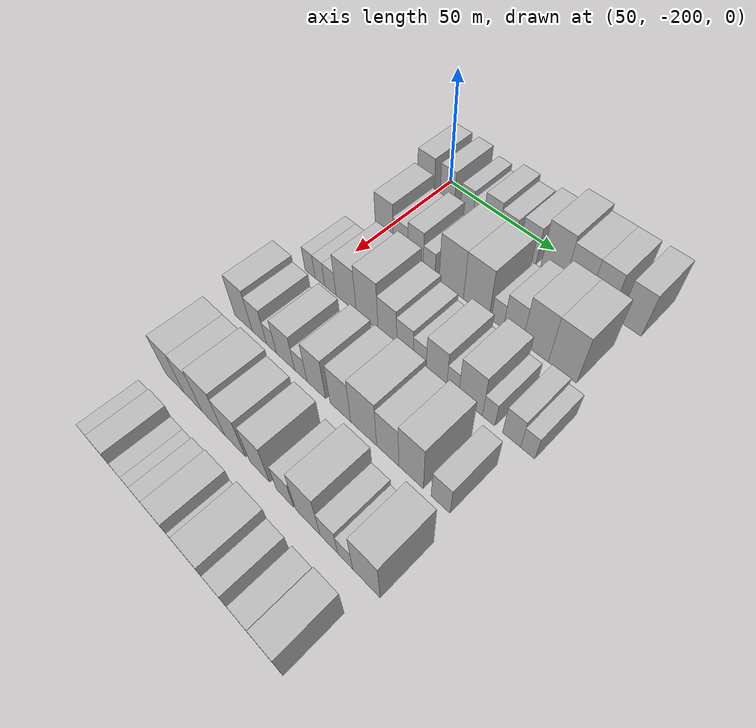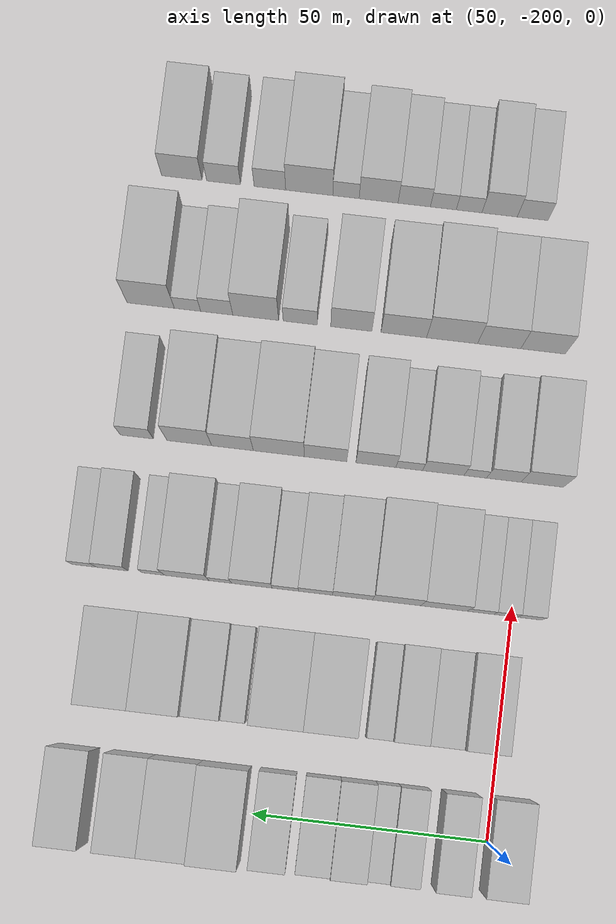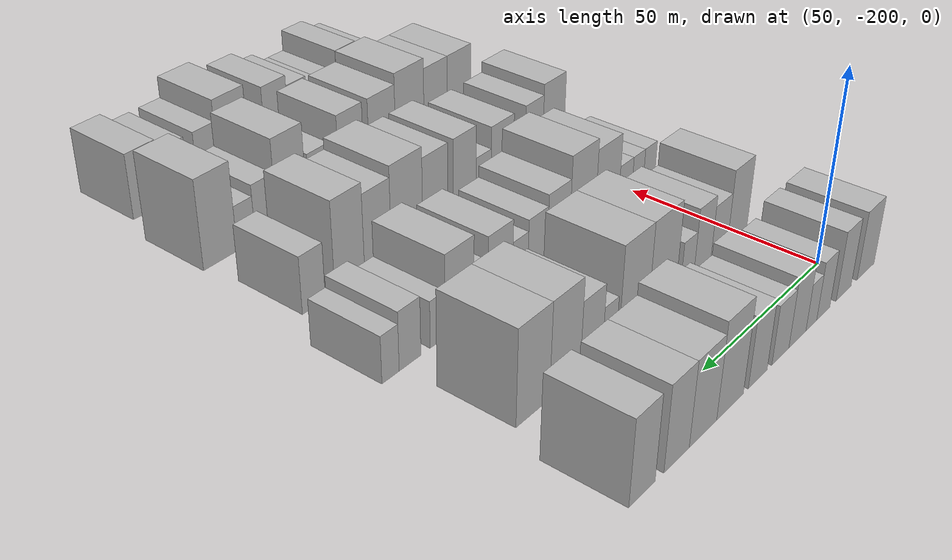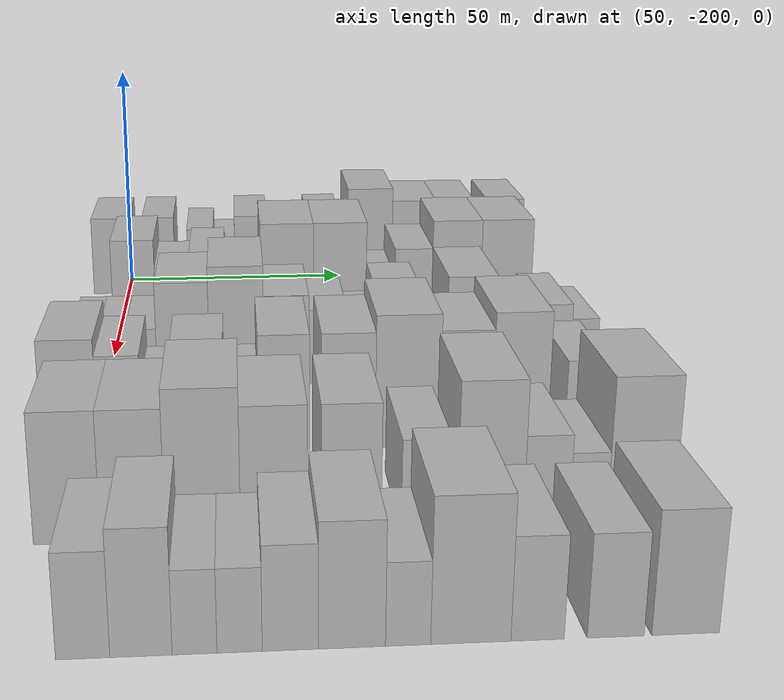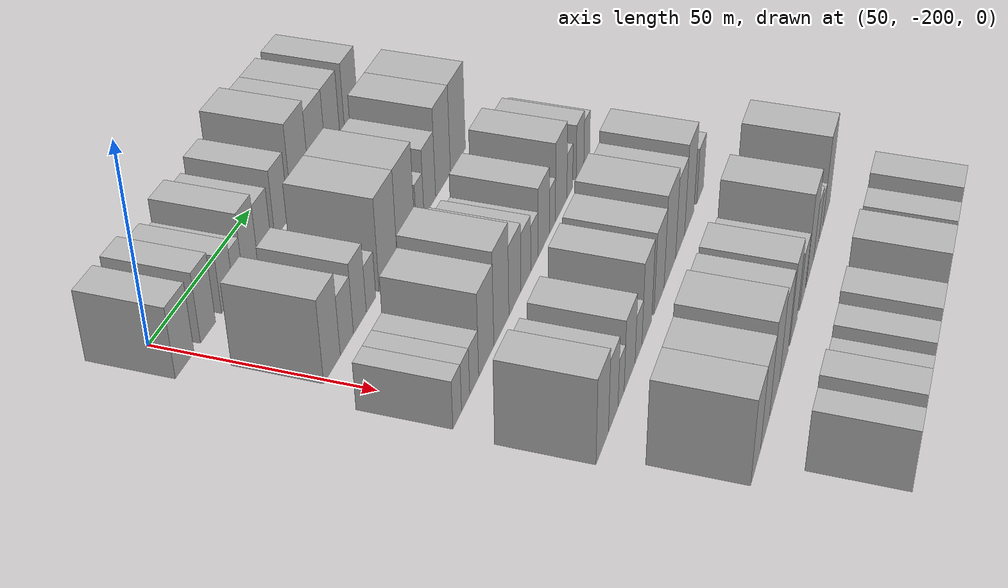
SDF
<sdf version="1.6">
 <world name="default">
  <model name="building_36">
   <static>1</static>
   <pose>50.0000 -203.7256 0 0.000000 0.000000 0.000000</pose>
   <link name="link">
    <pose>0 0 9.00 0 0 0</pose>
    <collision name="collision"><geometry><box><size>20.0000 8.5807 18.0000</size></box></geometry></collision>
    <visual name="visual">
     <cast_shadows>0</cast_shadows>
     <geometry><box><size>20.0000 8.5807 18.0000</size></box></geometry>
     <material>
      <script>
       <uri>model://HANNAS_wall/materials/scripts</uri>
       <uri>model://HANNAS_wall/materials/textures</uri>
       <name>vrc/HANNAS_wall</name>
      </script>
     </material>
    </visual>
   </link>
  </model>
  <model name="building_37">
   <static>1</static>
   <pose>50.0000 -192.8205 0 0.000000 0.000000 0.000000</pose>
   <link name="link">
    <pose>0 0 9.00 0 0 0</pose>
    <collision name="collision"><geometry><box><size>20.0000 7.2296 18.0000</size></box></geometry></collision>
    <visual name="visual">
     <cast_shadows>0</cast_shadows>
     <geometry><box><size>20.0000 7.2296 18.0000</size></box></geometry>
     <material>
      <script>
       <uri>model://HANNAS_wall/materials/scripts</uri>
       <uri>model://HANNAS_wall/materials/textures</uri>
       <name>vrc/HANNAS_wall</name>
      </script>
     </material>
    </visual>
   </link>
  </model>
  <model name="building_38">
   <static>1</static>
   <pose>50.0000 -183.1568 0 0.000000 0.000000 0.000000</pose>
   <link name="link">
    <pose>0 0 7.50 0 0 0</pose>
    <collision name="collision"><geometry><box><size>20.0000 6.0977 15.0000</size></box></geometry></collision>
    <visual name="visual">
     <cast_shadows>0</cast_shadows>
     <geometry><box><size>20.0000 6.0977 15.0000</size></box></geometry>
     <material>
      <script>
       <uri>model://HANNAS_wall/materials/scripts</uri>
       <uri>model://HANNAS_wall/materials/textures</uri>
       <name>vrc/HANNAS_wall</name>
      </script>
     </material>
    </visual>
   </link>
  </model>
  <model name="building_39">
   <static>1</static>
   <pose>50.0000 -177.6586 0 0.000000 0.000000 0.000000</pose>
   <link name="link">
    <pose>0 0 6.00 0 0 0</pose>
    <collision name="collision"><geometry><box><size>20.0000 4.8987 12.0000</size></box></geometry></collision>
    <visual name="visual">
     <cast_shadows>0</cast_shadows>
     <geometry><box><size>20.0000 4.8987 12.0000</size></box></geometry>
     <material>
      <script>
       <uri>model://HANNAS_wall/materials/scripts</uri>
       <uri>model://HANNAS_wall/materials/textures</uri>
       <name>vrc/HANNAS_wall</name>
      </script>
     </material>
    </visual>
   </link>
  </model>
  <model name="building_40">
   <static>1</static>
   <pose>50.0000 -171.4478 0 0.000000 0.000000 0.000000</pose>
   <link name="link">
    <pose>0 0 9.00 0 0 0</pose>
    <collision name="collision"><geometry><box><size>20.0000 7.5229 18.0000</size></box></geometry></collision>
    <visual name="visual">
     <cast_shadows>0</cast_shadows>
     <geometry><box><size>20.0000 7.5229 18.0000</size></box></geometry>
     <material>
      <script>
       <uri>model://HANNAS_wall/materials/scripts</uri>
       <uri>model://HANNAS_wall/materials/textures</uri>
       <name>vrc/HANNAS_wall</name>
      </script>
     </material>
    </visual>
   </link>
  </model>
  <model name="building_41">
   <static>1</static>
   <pose>50.0000 -164.0567 0 0.000000 0.000000 0.000000</pose>
   <link name="link">
    <pose>0 0 7.50 0 0 0</pose>
    <collision name="collision"><geometry><box><size>20.0000 7.2592 15.0000</size></box></geometry></collision>
    <visual name="visual">
     <cast_shadows>0</cast_shadows>
     <geometry><box><size>20.0000 7.2592 15.0000</size></box></geometry>
     <material>
      <script>
       <uri>model://HANNAS_wall/materials/scripts</uri>
       <uri>model://HANNAS_wall/materials/textures</uri>
       <name>vrc/HANNAS_wall</name>
      </script>
     </material>
    </visual>
   </link>
  </model>
  <model name="building_42">
   <static>1</static>
   <pose>50.0000 -154.5788 0 0.000000 0.000000 0.000000</pose>
   <link name="link">
    <pose>0 0 9.00 0 0 0</pose>
    <collision name="collision"><geometry><box><size>20.0000 7.6966 18.0000</size></box></geometry></collision>
    <visual name="visual">
     <cast_shadows>0</cast_shadows>
     <geometry><box><size>20.0000 7.6966 18.0000</size></box></geometry>
     <material>
      <script>
       <uri>model://HANNAS_wall/materials/scripts</uri>
       <uri>model://HANNAS_wall/materials/textures</uri>
       <name>vrc/HANNAS_wall</name>
      </script>
     </material>
    </visual>
   </link>
  </model>
  <model name="building_43">
   <static>1</static>
   <pose>50.0000 -143.5376 0 0.000000 0.000000 0.000000</pose>
   <link name="link">
    <pose>0 0 12.00 0 0 0</pose>
    <collision name="collision"><geometry><box><size>20.0000 10.3859 24.0000</size></box></geometry></collision>
    <visual name="visual">
     <cast_shadows>0</cast_shadows>
     <geometry><box><size>20.0000 10.3859 24.0000</size></box></geometry>
     <material>
      <script>
       <uri>model://HANNAS_wall/materials/scripts</uri>
       <uri>model://HANNAS_wall/materials/textures</uri>
       <name>vrc/HANNAS_wall</name>
      </script>
     </material>
    </visual>
   </link>
  </model>
  <model name="building_44">
   <static>1</static>
   <pose>50.0000 -133.2774 0 0.000000 0.000000 0.000000</pose>
   <link name="link">
    <pose>0 0 10.50 0 0 0</pose>
    <collision name="collision"><geometry><box><size>20.0000 10.1345 21.0000</size></box></geometry></collision>
    <visual name="visual">
     <cast_shadows>0</cast_shadows>
     <geometry><box><size>20.0000 10.1345 21.0000</size></box></geometry>
     <material>
      <script>
       <uri>model://HANNAS_wall/materials/scripts</uri>
       <uri>model://HANNAS_wall/materials/textures</uri>
       <name>vrc/HANNAS_wall</name>
      </script>
     </material>
    </visual>
   </link>
  </model>
  <model name="building_45">
   <static>1</static>
   <pose>50.0000 -123.7188 0 0.000000 0.000000 0.000000</pose>
   <link name="link">
    <pose>0 0 10.50 0 0 0</pose>
    <collision name="collision"><geometry><box><size>20.0000 8.9827 21.0000</size></box></geometry></collision>
    <visual name="visual">
     <cast_shadows>0</cast_shadows>
     <geometry><box><size>20.0000 8.9827 21.0000</size></box></geometry>
     <material>
      <script>
       <uri>model://HANNAS_wall/materials/scripts</uri>
       <uri>model://HANNAS_wall/materials/textures</uri>
       <name>vrc/HANNAS_wall</name>
      </script>
     </material>
    </visual>
   </link>
  </model>
  <model name="building_46">
   <static>1</static>
   <pose>50.0000 -111.8384 0 0.000000 0.000000 0.000000</pose>
   <link name="link">
    <pose>0 0 10.50 0 0 0</pose>
    <collision name="collision"><geometry><box><size>20.0000 8.7780 21.0000</size></box></geometry></collision>
    <visual name="visual">
     <cast_shadows>0</cast_shadows>
     <geometry><box><size>20.0000 8.7780 21.0000</size></box></geometry>
     <material>
      <script>
       <uri>model://HANNAS_wall/materials/scripts</uri>
       <uri>model://HANNAS_wall/materials/textures</uri>
       <name>vrc/HANNAS_wall</name>
      </script>
     </material>
    </visual>
   </link>
  </model>
  <model name="building_148">
   <static>1</static>
   <pose>79.0000 -196.5860 0 0.000000 0.000000 0.000000</pose>
   <link name="link">
    <pose>0 0 10.50 0 0 0</pose>
    <collision name="collision"><geometry><box><size>20.0000 8.9480 21.0000</size></box></geometry></collision>
    <visual name="visual">
     <cast_shadows>0</cast_shadows>
     <geometry><box><size>20.0000 8.9480 21.0000</size></box></geometry>
     <material>
      <script>
       <uri>model://HANNAS_wall/materials/scripts</uri>
       <uri>model://HANNAS_wall/materials/textures</uri>
       <name>vrc/HANNAS_wall</name>
      </script>
     </material>
    </visual>
   </link>
  </model>
  <model name="building_149">
   <static>1</static>
   <pose>79.0000 -188.4602 0 0.000000 0.000000 0.000000</pose>
   <link name="link">
    <pose>0 0 7.50 0 0 0</pose>
    <collision name="collision"><geometry><box><size>20.0000 7.3036 15.0000</size></box></geometry></collision>
    <visual name="visual">
     <cast_shadows>0</cast_shadows>
     <geometry><box><size>20.0000 7.3036 15.0000</size></box></geometry>
     <material>
      <script>
       <uri>model://HANNAS_wall/materials/scripts</uri>
       <uri>model://HANNAS_wall/materials/textures</uri>
       <name>vrc/HANNAS_wall</name>
      </script>
     </material>
    </visual>
   </link>
  </model>
  <model name="building_150">
   <static>1</static>
   <pose>79.0000 -181.1366 0 0.000000 0.000000 0.000000</pose>
   <link name="link">
    <pose>0 0 9.00 0 0 0</pose>
    <collision name="collision"><geometry><box><size>20.0000 7.3436 18.0000</size></box></geometry></collision>
    <visual name="visual">
     <cast_shadows>0</cast_shadows>
     <geometry><box><size>20.0000 7.3436 18.0000</size></box></geometry>
     <material>
      <script>
       <uri>model://HANNAS_wall/materials/scripts</uri>
       <uri>model://HANNAS_wall/materials/textures</uri>
       <name>vrc/HANNAS_wall</name>
      </script>
     </material>
    </visual>
   </link>
  </model>
  <model name="building_151">
   <static>1</static>
   <pose>79.0000 -174.6814 0 0.000000 0.000000 0.000000</pose>
   <link name="link">
    <pose>0 0 6.00 0 0 0</pose>
    <collision name="collision"><geometry><box><size>20.0000 5.5668 12.0000</size></box></geometry></collision>
    <visual name="visual">
     <cast_shadows>0</cast_shadows>
     <geometry><box><size>20.0000 5.5668 12.0000</size></box></geometry>
     <material>
      <script>
       <uri>model://HANNAS_wall/materials/scripts</uri>
       <uri>model://HANNAS_wall/materials/textures</uri>
       <name>vrc/HANNAS_wall</name>
      </script>
     </material>
    </visual>
   </link>
  </model>
  <model name="building_152">
   <static>1</static>
   <pose>79.0000 -164.3214 0 0.000000 0.000000 0.000000</pose>
   <link name="link">
    <pose>0 0 12.00 0 0 0</pose>
    <collision name="collision"><geometry><box><size>20.0000 11.1532 24.0000</size></box></geometry></collision>
    <visual name="visual">
     <cast_shadows>0</cast_shadows>
     <geometry><box><size>20.0000 11.1532 24.0000</size></box></geometry>
     <material>
      <script>
       <uri>model://HANNAS_wall/materials/scripts</uri>
       <uri>model://HANNAS_wall/materials/textures</uri>
       <name>vrc/HANNAS_wall</name>
      </script>
     </material>
    </visual>
   </link>
  </model>
  <model name="building_153">
   <static>1</static>
   <pose>79.0000 -153.0973 0 0.000000 0.000000 0.000000</pose>
   <link name="link">
    <pose>0 0 12.00 0 0 0</pose>
    <collision name="collision"><geometry><box><size>20.0000 11.2950 24.0000</size></box></geometry></collision>
    <visual name="visual">
     <cast_shadows>0</cast_shadows>
     <geometry><box><size>20.0000 11.2950 24.0000</size></box></geometry>
     <material>
      <script>
       <uri>model://HANNAS_wall/materials/scripts</uri>
       <uri>model://HANNAS_wall/materials/textures</uri>
       <name>vrc/HANNAS_wall</name>
      </script>
     </material>
    </visual>
   </link>
  </model>
  <model name="building_154">
   <static>1</static>
   <pose>79.0000 -143.8885 0 0.000000 0.000000 0.000000</pose>
   <link name="link">
    <pose>0 0 6.00 0 0 0</pose>
    <collision name="collision"><geometry><box><size>20.0000 5.1227 12.0000</size></box></geometry></collision>
    <visual name="visual">
     <cast_shadows>0</cast_shadows>
     <geometry><box><size>20.0000 5.1227 12.0000</size></box></geometry>
     <material>
      <script>
       <uri>model://HANNAS_wall/materials/scripts</uri>
       <uri>model://HANNAS_wall/materials/textures</uri>
       <name>vrc/HANNAS_wall</name>
      </script>
     </material>
    </visual>
   </link>
  </model>
  <model name="building_155">
   <static>1</static>
   <pose>79.0000 -137.3324 0 0.000000 0.000000 0.000000</pose>
   <link name="link">
    <pose>0 0 9.00 0 0 0</pose>
    <collision name="collision"><geometry><box><size>20.0000 7.9895 18.0000</size></box></geometry></collision>
    <visual name="visual">
     <cast_shadows>0</cast_shadows>
     <geometry><box><size>20.0000 7.9895 18.0000</size></box></geometry>
     <material>
      <script>
       <uri>model://HANNAS_wall/materials/scripts</uri>
       <uri>model://HANNAS_wall/materials/textures</uri>
       <name>vrc/HANNAS_wall</name>
      </script>
     </material>
    </visual>
   </link>
  </model>
  <model name="building_156">
   <static>1</static>
   <pose>79.0000 -128.0997 0 0.000000 0.000000 0.000000</pose>
   <link name="link">
    <pose>0 0 12.00 0 0 0</pose>
    <collision name="collision"><geometry><box><size>20.0000 10.4760 24.0000</size></box></geometry></collision>
    <visual name="visual">
     <cast_shadows>0</cast_shadows>
     <geometry><box><size>20.0000 10.4760 24.0000</size></box></geometry>
     <material>
      <script>
       <uri>model://HANNAS_wall/materials/scripts</uri>
       <uri>model://HANNAS_wall/materials/textures</uri>
       <name>vrc/HANNAS_wall</name>
      </script>
     </material>
    </visual>
   </link>
  </model>
  <model name="building_157">
   <static>1</static>
   <pose>79.0000 -117.3535 0 0.000000 0.000000 0.000000</pose>
   <link name="link">
    <pose>0 0 12.00 0 0 0</pose>
    <collision name="collision"><geometry><box><size>20.0000 11.0164 24.0000</size></box></geometry></collision>
    <visual name="visual">
     <cast_shadows>0</cast_shadows>
     <geometry><box><size>20.0000 11.0164 24.0000</size></box></geometry>
     <material>
      <script>
       <uri>model://HANNAS_wall/materials/scripts</uri>
       <uri>model://HANNAS_wall/materials/textures</uri>
       <name>vrc/HANNAS_wall</name>
      </script>
     </material>
    </visual>
   </link>
  </model>
  <model name="building_259">
   <static>1</static>
   <pose>108.0000 -203.8097 0 0.000000 0.000000 0.000000</pose>
   <link name="link">
    <pose>0 0 6.00 0 0 0</pose>
    <collision name="collision"><geometry><box><size>20.0000 5.2586 12.0000</size></box></geometry></collision>
    <visual name="visual">
     <cast_shadows>0</cast_shadows>
     <geometry><box><size>20.0000 5.2586 12.0000</size></box></geometry>
     <material>
      <script>
       <uri>model://HANNAS_wall/materials/scripts</uri>
       <uri>model://HANNAS_wall/materials/textures</uri>
       <name>vrc/HANNAS_wall</name>
      </script>
     </material>
    </visual>
   </link>
  </model>
  <model name="building_260">
   <static>1</static>
   <pose>108.0000 -198.6536 0 0.000000 0.000000 0.000000</pose>
   <link name="link">
    <pose>0 0 6.00 0 0 0</pose>
    <collision name="collision"><geometry><box><size>20.0000 5.0536 12.0000</size></box></geometry></collision>
    <visual name="visual">
     <cast_shadows>0</cast_shadows>
     <geometry><box><size>20.0000 5.0536 12.0000</size></box></geometry>
     <material>
      <script>
       <uri>model://HANNAS_wall/materials/scripts</uri>
       <uri>model://HANNAS_wall/materials/textures</uri>
       <name>vrc/HANNAS_wall</name>
      </script>
     </material>
    </visual>
   </link>
  </model>
  <model name="building_261">
   <static>1</static>
   <pose>108.0000 -193.2726 0 0.000000 0.000000 0.000000</pose>
   <link name="link">
    <pose>0 0 6.00 0 0 0</pose>
    <collision name="collision"><geometry><box><size>20.0000 5.7086 12.0000</size></box></geometry></collision>
    <visual name="visual">
     <cast_shadows>0</cast_shadows>
     <geometry><box><size>20.0000 5.7086 12.0000</size></box></geometry>
     <material>
      <script>
       <uri>model://HANNAS_wall/materials/scripts</uri>
       <uri>model://HANNAS_wall/materials/textures</uri>
       <name>vrc/HANNAS_wall</name>
      </script>
     </material>
    </visual>
   </link>
  </model>
  <model name="building_262">
   <static>1</static>
   <pose>108.0000 -185.4451 0 0.000000 0.000000 0.000000</pose>
   <link name="link">
    <pose>0 0 10.50 0 0 0</pose>
    <collision name="collision"><geometry><box><size>20.0000 9.9463 21.0000</size></box></geometry></collision>
    <visual name="visual">
     <cast_shadows>0</cast_shadows>
     <geometry><box><size>20.0000 9.9463 21.0000</size></box></geometry>
     <material>
      <script>
       <uri>model://HANNAS_wall/materials/scripts</uri>
       <uri>model://HANNAS_wall/materials/textures</uri>
       <name>vrc/HANNAS_wall</name>
      </script>
     </material>
    </visual>
   </link>
  </model>
  <model name="building_263">
   <static>1</static>
   <pose>108.0000 -175.2684 0 0.000000 0.000000 0.000000</pose>
   <link name="link">
    <pose>0 0 12.00 0 0 0</pose>
    <collision name="collision"><geometry><box><size>20.0000 10.4073 24.0000</size></box></geometry></collision>
    <visual name="visual">
     <cast_shadows>0</cast_shadows>
     <geometry><box><size>20.0000 10.4073 24.0000</size></box></geometry>
     <material>
      <script>
       <uri>model://HANNAS_wall/materials/scripts</uri>
       <uri>model://HANNAS_wall/materials/textures</uri>
       <name>vrc/HANNAS_wall</name>
      </script>
     </material>
    </visual>
   </link>
  </model>
  <model name="building_264">
   <static>1</static>
   <pose>108.0000 -165.7623 0 0.000000 0.000000 0.000000</pose>
   <link name="link">
    <pose>0 0 9.00 0 0 0</pose>
    <collision name="collision"><geometry><box><size>20.0000 8.6048 18.0000</size></box></geometry></collision>
    <visual name="visual">
     <cast_shadows>0</cast_shadows>
     <geometry><box><size>20.0000 8.6048 18.0000</size></box></geometry>
     <material>
      <script>
       <uri>model://HANNAS_wall/materials/scripts</uri>
       <uri>model://HANNAS_wall/materials/textures</uri>
       <name>vrc/HANNAS_wall</name>
      </script>
     </material>
    </visual>
   </link>
  </model>
  <model name="building_265">
   <static>1</static>
   <pose>108.0000 -157.8031 0 0.000000 0.000000 0.000000</pose>
   <link name="link">
    <pose>0 0 7.50 0 0 0</pose>
    <collision name="collision"><geometry><box><size>20.0000 7.3136 15.0000</size></box></geometry></collision>
    <visual name="visual">
     <cast_shadows>0</cast_shadows>
     <geometry><box><size>20.0000 7.3136 15.0000</size></box></geometry>
     <material>
      <script>
       <uri>model://HANNAS_wall/materials/scripts</uri>
       <uri>model://HANNAS_wall/materials/textures</uri>
       <name>vrc/HANNAS_wall</name>
      </script>
     </material>
    </visual>
   </link>
  </model>
  <model name="building_266">
   <static>1</static>
   <pose>108.0000 -151.3128 0 0.000000 0.000000 0.000000</pose>
   <link name="link">
    <pose>0 0 6.00 0 0 0</pose>
    <collision name="collision"><geometry><box><size>20.0000 5.6670 12.0000</size></box></geometry></collision>
    <visual name="visual">
     <cast_shadows>0</cast_shadows>
     <geometry><box><size>20.0000 5.6670 12.0000</size></box></geometry>
     <material>
      <script>
       <uri>model://HANNAS_wall/materials/scripts</uri>
       <uri>model://HANNAS_wall/materials/textures</uri>
       <name>vrc/HANNAS_wall</name>
      </script>
     </material>
    </visual>
   </link>
  </model>
  <model name="building_267">
   <static>1</static>
   <pose>108.0000 -144.1164 0 0.000000 0.000000 0.000000</pose>
   <link name="link">
    <pose>0 0 9.00 0 0 0</pose>
    <collision name="collision"><geometry><box><size>20.0000 8.7258 18.0000</size></box></geometry></collision>
    <visual name="visual">
     <cast_shadows>0</cast_shadows>
     <geometry><box><size>20.0000 8.7258 18.0000</size></box></geometry>
     <material>
      <script>
       <uri>model://HANNAS_wall/materials/scripts</uri>
       <uri>model://HANNAS_wall/materials/textures</uri>
       <name>vrc/HANNAS_wall</name>
      </script>
     </material>
    </visual>
   </link>
  </model>
  <model name="building_268">
   <static>1</static>
   <pose>108.0000 -137.3046 0 0.000000 0.000000 0.000000</pose>
   <link name="link">
    <pose>0 0 6.00 0 0 0</pose>
    <collision name="collision"><geometry><box><size>20.0000 4.8979 12.0000</size></box></geometry></collision>
    <visual name="visual">
     <cast_shadows>0</cast_shadows>
     <geometry><box><size>20.0000 4.8979 12.0000</size></box></geometry>
     <material>
      <script>
       <uri>model://HANNAS_wall/materials/scripts</uri>
       <uri>model://HANNAS_wall/materials/textures</uri>
       <name>vrc/HANNAS_wall</name>
      </script>
     </material>
    </visual>
   </link>
  </model>
  <model name="building_269">
   <static>1</static>
   <pose>108.0000 -130.0795 0 0.000000 0.000000 0.000000</pose>
   <link name="link">
    <pose>0 0 10.50 0 0 0</pose>
    <collision name="collision"><geometry><box><size>20.0000 9.5524 21.0000</size></box></geometry></collision>
    <visual name="visual">
     <cast_shadows>0</cast_shadows>
     <geometry><box><size>20.0000 9.5524 21.0000</size></box></geometry>
     <material>
      <script>
       <uri>model://HANNAS_wall/materials/scripts</uri>
       <uri>model://HANNAS_wall/materials/textures</uri>
       <name>vrc/HANNAS_wall</name>
      </script>
     </material>
    </visual>
   </link>
  </model>
  <model name="building_270">
   <static>1</static>
   <pose>108.0000 -122.8451 0 0.000000 0.000000 0.000000</pose>
   <link name="link">
    <pose>0 0 6.00 0 0 0</pose>
    <collision name="collision"><geometry><box><size>20.0000 4.9163 12.0000</size></box></geometry></collision>
    <visual name="visual">
     <cast_shadows>0</cast_shadows>
     <geometry><box><size>20.0000 4.9163 12.0000</size></box></geometry>
     <material>
      <script>
       <uri>model://HANNAS_wall/materials/scripts</uri>
       <uri>model://HANNAS_wall/materials/textures</uri>
       <name>vrc/HANNAS_wall</name>
      </script>
     </material>
    </visual>
   </link>
  </model>
  <model name="building_271">
   <static>1</static>
   <pose>108.0000 -113.9881 0 0.000000 0.000000 0.000000</pose>
   <link name="link">
    <pose>0 0 7.50 0 0 0</pose>
    <collision name="collision"><geometry><box><size>20.0000 6.7977 15.0000</size></box></geometry></collision>
    <visual name="visual">
     <cast_shadows>0</cast_shadows>
     <geometry><box><size>20.0000 6.7977 15.0000</size></box></geometry>
     <material>
      <script>
       <uri>model://HANNAS_wall/materials/scripts</uri>
       <uri>model://HANNAS_wall/materials/textures</uri>
       <name>vrc/HANNAS_wall</name>
      </script>
     </material>
    </visual>
   </link>
  </model>
  <model name="building_272">
   <static>1</static>
   <pose>108.0000 -107.9526 0 0.000000 0.000000 0.000000</pose>
   <link name="link">
    <pose>0 0 6.00 0 0 0</pose>
    <collision name="collision"><geometry><box><size>20.0000 5.2732 12.0000</size></box></geometry></collision>
    <visual name="visual">
     <cast_shadows>0</cast_shadows>
     <geometry><box><size>20.0000 5.2732 12.0000</size></box></geometry>
     <material>
      <script>
       <uri>model://HANNAS_wall/materials/scripts</uri>
       <uri>model://HANNAS_wall/materials/textures</uri>
       <name>vrc/HANNAS_wall</name>
      </script>
     </material>
    </visual>
   </link>
  </model>
  <model name="building_369">
   <static>1</static>
   <pose>137.0000 -203.5643 0 0.000000 0.000000 0.000000</pose>
   <link name="link">
    <pose>0 0 10.50 0 0 0</pose>
    <collision name="collision"><geometry><box><size>20.0000 9.3043 21.0000</size></box></geometry></collision>
    <visual name="visual">
     <cast_shadows>0</cast_shadows>
     <geometry><box><size>20.0000 9.3043 21.0000</size></box></geometry>
     <material>
      <script>
       <uri>model://HANNAS_wall/materials/scripts</uri>
       <uri>model://HANNAS_wall/materials/textures</uri>
       <name>vrc/HANNAS_wall</name>
      </script>
     </material>
    </visual>
   </link>
  </model>
  <model name="building_370">
   <static>1</static>
   <pose>137.0000 -195.1996 0 0.000000 0.000000 0.000000</pose>
   <link name="link">
    <pose>0 0 9.00 0 0 0</pose>
    <collision name="collision"><geometry><box><size>20.0000 7.4252 18.0000</size></box></geometry></collision>
    <visual name="visual">
     <cast_shadows>0</cast_shadows>
     <geometry><box><size>20.0000 7.4252 18.0000</size></box></geometry>
     <material>
      <script>
       <uri>model://HANNAS_wall/materials/scripts</uri>
       <uri>model://HANNAS_wall/materials/textures</uri>
       <name>vrc/HANNAS_wall</name>
      </script>
     </material>
    </visual>
   </link>
  </model>
  <model name="building_371">
   <static>1</static>
   <pose>137.0000 -189.0539 0 0.000000 0.000000 0.000000</pose>
   <link name="link">
    <pose>0 0 6.00 0 0 0</pose>
    <collision name="collision"><geometry><box><size>20.0000 4.8663 12.0000</size></box></geometry></collision>
    <visual name="visual">
     <cast_shadows>0</cast_shadows>
     <geometry><box><size>20.0000 4.8663 12.0000</size></box></geometry>
     <material>
      <script>
       <uri>model://HANNAS_wall/materials/scripts</uri>
       <uri>model://HANNAS_wall/materials/textures</uri>
       <name>vrc/HANNAS_wall</name>
      </script>
     </material>
    </visual>
   </link>
  </model>
  <model name="building_372">
   <static>1</static>
   <pose>137.0000 -182.1337 0 0.000000 0.000000 0.000000</pose>
   <link name="link">
    <pose>0 0 9.00 0 0 0</pose>
    <collision name="collision"><geometry><box><size>20.0000 8.9741 18.0000</size></box></geometry></collision>
    <visual name="visual">
     <cast_shadows>0</cast_shadows>
     <geometry><box><size>20.0000 8.9741 18.0000</size></box></geometry>
     <material>
      <script>
       <uri>model://HANNAS_wall/materials/scripts</uri>
       <uri>model://HANNAS_wall/materials/textures</uri>
       <name>vrc/HANNAS_wall</name>
      </script>
     </material>
    </visual>
   </link>
  </model>
  <model name="building_373">
   <static>1</static>
   <pose>137.0000 -174.7266 0 0.000000 0.000000 0.000000</pose>
   <link name="link">
    <pose>0 0 6.00 0 0 0</pose>
    <collision name="collision"><geometry><box><size>20.0000 5.8402 12.0000</size></box></geometry></collision>
    <visual name="visual">
     <cast_shadows>0</cast_shadows>
     <geometry><box><size>20.0000 5.8402 12.0000</size></box></geometry>
     <material>
      <script>
       <uri>model://HANNAS_wall/materials/scripts</uri>
       <uri>model://HANNAS_wall/materials/textures</uri>
       <name>vrc/HANNAS_wall</name>
      </script>
     </material>
    </visual>
   </link>
  </model>
  <model name="building_374">
   <static>1</static>
   <pose>137.0000 -167.4734 0 0.000000 0.000000 0.000000</pose>
   <link name="link">
    <pose>0 0 10.50 0 0 0</pose>
    <collision name="collision"><geometry><box><size>20.0000 8.6662 21.0000</size></box></geometry></collision>
    <visual name="visual">
     <cast_shadows>0</cast_shadows>
     <geometry><box><size>20.0000 8.6662 21.0000</size></box></geometry>
     <material>
      <script>
       <uri>model://HANNAS_wall/materials/scripts</uri>
       <uri>model://HANNAS_wall/materials/textures</uri>
       <name>vrc/HANNAS_wall</name>
      </script>
     </material>
    </visual>
   </link>
  </model>
  <model name="building_375">
   <static>1</static>
   <pose>137.0000 -156.5365 0 0.000000 0.000000 0.000000</pose>
   <link name="link">
    <pose>0 0 10.50 0 0 0</pose>
    <collision name="collision"><geometry><box><size>20.0000 9.2076 21.0000</size></box></geometry></collision>
    <visual name="visual">
     <cast_shadows>0</cast_shadows>
     <geometry><box><size>20.0000 9.2076 21.0000</size></box></geometry>
     <material>
      <script>
       <uri>model://HANNAS_wall/materials/scripts</uri>
       <uri>model://HANNAS_wall/materials/textures</uri>
       <name>vrc/HANNAS_wall</name>
      </script>
     </material>
    </visual>
   </link>
  </model>
  <model name="building_376">
   <static>1</static>
   <pose>137.0000 -146.3927 0 0.000000 0.000000 0.000000</pose>
   <link name="link">
    <pose>0 0 12.00 0 0 0</pose>
    <collision name="collision"><geometry><box><size>20.0000 11.0800 24.0000</size></box></geometry></collision>
    <visual name="visual">
     <cast_shadows>0</cast_shadows>
     <geometry><box><size>20.0000 11.0800 24.0000</size></box></geometry>
     <material>
      <script>
       <uri>model://HANNAS_wall/materials/scripts</uri>
       <uri>model://HANNAS_wall/materials/textures</uri>
       <name>vrc/HANNAS_wall</name>
      </script>
     </material>
    </visual>
   </link>
  </model>
  <model name="building_377">
   <static>1</static>
   <pose>137.0000 -136.3236 0 0.000000 0.000000 0.000000</pose>
   <link name="link">
    <pose>0 0 10.50 0 0 0</pose>
    <collision name="collision"><geometry><box><size>20.0000 9.0582 21.0000</size></box></geometry></collision>
    <visual name="visual">
     <cast_shadows>0</cast_shadows>
     <geometry><box><size>20.0000 9.0582 21.0000</size></box></geometry>
     <material>
      <script>
       <uri>model://HANNAS_wall/materials/scripts</uri>
       <uri>model://HANNAS_wall/materials/textures</uri>
       <name>vrc/HANNAS_wall</name>
      </script>
     </material>
    </visual>
   </link>
  </model>
  <model name="building_378">
   <static>1</static>
   <pose>137.0000 -126.9315 0 0.000000 0.000000 0.000000</pose>
   <link name="link">
    <pose>0 0 12.00 0 0 0</pose>
    <collision name="collision"><geometry><box><size>20.0000 9.7260 24.0000</size></box></geometry></collision>
    <visual name="visual">
     <cast_shadows>0</cast_shadows>
     <geometry><box><size>20.0000 9.7260 24.0000</size></box></geometry>
     <material>
      <script>
       <uri>model://HANNAS_wall/materials/scripts</uri>
       <uri>model://HANNAS_wall/materials/textures</uri>
       <name>vrc/HANNAS_wall</name>
      </script>
     </material>
    </visual>
   </link>
  </model>
  <model name="building_379">
   <static>1</static>
   <pose>137.0000 -115.4970 0 0.000000 0.000000 0.000000</pose>
   <link name="link">
    <pose>0 0 7.50 0 0 0</pose>
    <collision name="collision"><geometry><box><size>20.0000 7.1431 15.0000</size></box></geometry></collision>
    <visual name="visual">
     <cast_shadows>0</cast_shadows>
     <geometry><box><size>20.0000 7.1431 15.0000</size></box></geometry>
     <material>
      <script>
       <uri>model://HANNAS_wall/materials/scripts</uri>
       <uri>model://HANNAS_wall/materials/textures</uri>
       <name>vrc/HANNAS_wall</name>
      </script>
     </material>
    </visual>
   </link>
  </model>
  <model name="building_483">
   <static>1</static>
   <pose>166.0000 -200.6939 0 0.000000 0.000000 0.000000</pose>
   <link name="link">
    <pose>0 0 10.50 0 0 0</pose>
    <collision name="collision"><geometry><box><size>20.0000 9.7338 21.0000</size></box></geometry></collision>
    <visual name="visual">
     <cast_shadows>0</cast_shadows>
     <geometry><box><size>20.0000 9.7338 21.0000</size></box></geometry>
     <material>
      <script>
       <uri>model://HANNAS_wall/materials/scripts</uri>
       <uri>model://HANNAS_wall/materials/textures</uri>
       <name>vrc/HANNAS_wall</name>
      </script>
     </material>
    </visual>
   </link>
  </model>
  <model name="building_484">
   <static>1</static>
   <pose>166.0000 -191.0983 0 0.000000 0.000000 0.000000</pose>
   <link name="link">
    <pose>0 0 10.50 0 0 0</pose>
    <collision name="collision"><geometry><box><size>20.0000 9.4575 21.0000</size></box></geometry></collision>
    <visual name="visual">
     <cast_shadows>0</cast_shadows>
     <geometry><box><size>20.0000 9.4575 21.0000</size></box></geometry>
     <material>
      <script>
       <uri>model://HANNAS_wall/materials/scripts</uri>
       <uri>model://HANNAS_wall/materials/textures</uri>
       <name>vrc/HANNAS_wall</name>
      </script>
     </material>
    </visual>
   </link>
  </model>
  <model name="building_485">
   <static>1</static>
   <pose>166.0000 -180.7948 0 0.000000 0.000000 0.000000</pose>
   <link name="link">
    <pose>0 0 12.00 0 0 0</pose>
    <collision name="collision"><geometry><box><size>20.0000 11.1493 24.0000</size></box></geometry></collision>
    <visual name="visual">
     <cast_shadows>0</cast_shadows>
     <geometry><box><size>20.0000 11.1493 24.0000</size></box></geometry>
     <material>
      <script>
       <uri>model://HANNAS_wall/materials/scripts</uri>
       <uri>model://HANNAS_wall/materials/textures</uri>
       <name>vrc/HANNAS_wall</name>
      </script>
     </material>
    </visual>
   </link>
  </model>
  <model name="building_486">
   <static>1</static>
   <pose>166.0000 -170.2342 0 0.000000 0.000000 0.000000</pose>
   <link name="link">
    <pose>0 0 10.50 0 0 0</pose>
    <collision name="collision"><geometry><box><size>20.0000 9.9720 21.0000</size></box></geometry></collision>
    <visual name="visual">
     <cast_shadows>0</cast_shadows>
     <geometry><box><size>20.0000 9.9720 21.0000</size></box></geometry>
     <material>
      <script>
       <uri>model://HANNAS_wall/materials/scripts</uri>
       <uri>model://HANNAS_wall/materials/textures</uri>
       <name>vrc/HANNAS_wall</name>
      </script>
     </material>
    </visual>
   </link>
  </model>
  <model name="building_487">
   <static>1</static>
   <pose>166.0000 -158.7559 0 0.000000 0.000000 0.000000</pose>
   <link name="link">
    <pose>0 0 10.50 0 0 0</pose>
    <collision name="collision"><geometry><box><size>20.0000 8.9846 21.0000</size></box></geometry></collision>
    <visual name="visual">
     <cast_shadows>0</cast_shadows>
     <geometry><box><size>20.0000 8.9846 21.0000</size></box></geometry>
     <material>
      <script>
       <uri>model://HANNAS_wall/materials/scripts</uri>
       <uri>model://HANNAS_wall/materials/textures</uri>
       <name>vrc/HANNAS_wall</name>
      </script>
     </material>
    </visual>
   </link>
  </model>
  <model name="building_488">
   <static>1</static>
   <pose>166.0000 -147.5554 0 0.000000 0.000000 0.000000</pose>
   <link name="link">
    <pose>0 0 7.50 0 0 0</pose>
    <collision name="collision"><geometry><box><size>20.0000 7.4163 15.0000</size></box></geometry></collision>
    <visual name="visual">
     <cast_shadows>0</cast_shadows>
     <geometry><box><size>20.0000 7.4163 15.0000</size></box></geometry>
     <material>
      <script>
       <uri>model://HANNAS_wall/materials/scripts</uri>
       <uri>model://HANNAS_wall/materials/textures</uri>
       <name>vrc/HANNAS_wall</name>
      </script>
     </material>
    </visual>
   </link>
  </model>
  <model name="building_489">
   <static>1</static>
   <pose>166.0000 -137.8214 0 0.000000 0.000000 0.000000</pose>
   <link name="link">
    <pose>0 0 12.00 0 0 0</pose>
    <collision name="collision"><geometry><box><size>20.0000 10.0518 24.0000</size></box></geometry></collision>
    <visual name="visual">
     <cast_shadows>0</cast_shadows>
     <geometry><box><size>20.0000 10.0518 24.0000</size></box></geometry>
     <material>
      <script>
       <uri>model://HANNAS_wall/materials/scripts</uri>
       <uri>model://HANNAS_wall/materials/textures</uri>
       <name>vrc/HANNAS_wall</name>
      </script>
     </material>
    </visual>
   </link>
  </model>
  <model name="building_490">
   <static>1</static>
   <pose>166.0000 -129.2789 0 0.000000 0.000000 0.000000</pose>
   <link name="link">
    <pose>0 0 7.50 0 0 0</pose>
    <collision name="collision"><geometry><box><size>20.0000 7.0332 15.0000</size></box></geometry></collision>
    <visual name="visual">
     <cast_shadows>0</cast_shadows>
     <geometry><box><size>20.0000 7.0332 15.0000</size></box></geometry>
     <material>
      <script>
       <uri>model://HANNAS_wall/materials/scripts</uri>
       <uri>model://HANNAS_wall/materials/textures</uri>
       <name>vrc/HANNAS_wall</name>
      </script>
     </material>
    </visual>
   </link>
  </model>
  <model name="building_491">
   <static>1</static>
   <pose>166.0000 -122.8763 0 0.000000 0.000000 0.000000</pose>
   <link name="link">
    <pose>0 0 6.00 0 0 0</pose>
    <collision name="collision"><geometry><box><size>20.0000 5.7720 12.0000</size></box></geometry></collision>
    <visual name="visual">
     <cast_shadows>0</cast_shadows>
     <geometry><box><size>20.0000 5.7720 12.0000</size></box></geometry>
     <material>
      <script>
       <uri>model://HANNAS_wall/materials/scripts</uri>
       <uri>model://HANNAS_wall/materials/textures</uri>
       <name>vrc/HANNAS_wall</name>
      </script>
     </material>
    </visual>
   </link>
  </model>
  <model name="building_492">
   <static>1</static>
   <pose>166.0000 -114.8210 0 0.000000 0.000000 0.000000</pose>
   <link name="link">
    <pose>0 0 12.00 0 0 0</pose>
    <collision name="collision"><geometry><box><size>20.0000 10.3385 24.0000</size></box></geometry></collision>
    <visual name="visual">
     <cast_shadows>0</cast_shadows>
     <geometry><box><size>20.0000 10.3385 24.0000</size></box></geometry>
     <material>
      <script>
       <uri>model://HANNAS_wall/materials/scripts</uri>
       <uri>model://HANNAS_wall/materials/textures</uri>
       <name>vrc/HANNAS_wall</name>
      </script>
     </material>
    </visual>
   </link>
  </model>
  <model name="building_588">
   <static>1</static>
   <pose>195.0000 -195.3215 0 0.000000 0.000000 0.000000</pose>
   <link name="link">
    <pose>0 0 7.50 0 0 0</pose>
    <collision name="collision"><geometry><box><size>20.0000 6.7500 15.0000</size></box></geometry></collision>
    <visual name="visual">
     <cast_shadows>0</cast_shadows>
     <geometry><box><size>20.0000 6.7500 15.0000</size></box></geometry>
     <material>
      <script>
       <uri>model://HANNAS_wall/materials/scripts</uri>
       <uri>model://HANNAS_wall/materials/textures</uri>
       <name>vrc/HANNAS_wall</name>
      </script>
     </material>
    </visual>
   </link>
  </model>
  <model name="building_589">
   <static>1</static>
   <pose>195.0000 -188.0519 0 0.000000 0.000000 0.000000</pose>
   <link name="link">
    <pose>0 0 9.00 0 0 0</pose>
    <collision name="collision"><geometry><box><size>20.0000 7.7893 18.0000</size></box></geometry></collision>
    <visual name="visual">
     <cast_shadows>0</cast_shadows>
     <geometry><box><size>20.0000 7.7893 18.0000</size></box></geometry>
     <material>
      <script>
       <uri>model://HANNAS_wall/materials/scripts</uri>
       <uri>model://HANNAS_wall/materials/textures</uri>
       <name>vrc/HANNAS_wall</name>
      </script>
     </material>
    </visual>
   </link>
  </model>
  <model name="building_590">
   <static>1</static>
   <pose>195.0000 -181.3342 0 0.000000 0.000000 0.000000</pose>
   <link name="link">
    <pose>0 0 6.00 0 0 0</pose>
    <collision name="collision"><geometry><box><size>20.0000 5.6460 12.0000</size></box></geometry></collision>
    <visual name="visual">
     <cast_shadows>0</cast_shadows>
     <geometry><box><size>20.0000 5.6460 12.0000</size></box></geometry>
     <material>
      <script>
       <uri>model://HANNAS_wall/materials/scripts</uri>
       <uri>model://HANNAS_wall/materials/textures</uri>
       <name>vrc/HANNAS_wall</name>
      </script>
     </material>
    </visual>
   </link>
  </model>
  <model name="building_591">
   <static>1</static>
   <pose>195.0000 -175.6547 0 0.000000 0.000000 0.000000</pose>
   <link name="link">
    <pose>0 0 6.00 0 0 0</pose>
    <collision name="collision"><geometry><box><size>20.0000 5.7131 12.0000</size></box></geometry></collision>
    <visual name="visual">
     <cast_shadows>0</cast_shadows>
     <geometry><box><size>20.0000 5.7131 12.0000</size></box></geometry>
     <material>
      <script>
       <uri>model://HANNAS_wall/materials/scripts</uri>
       <uri>model://HANNAS_wall/materials/textures</uri>
       <name>vrc/HANNAS_wall</name>
      </script>
     </material>
    </visual>
   </link>
  </model>
  <model name="building_592">
   <static>1</static>
   <pose>195.0000 -169.2352 0 0.000000 0.000000 0.000000</pose>
   <link name="link">
    <pose>0 0 7.50 0 0 0</pose>
    <collision name="collision"><geometry><box><size>20.0000 7.1258 15.0000</size></box></geometry></collision>
    <visual name="visual">
     <cast_shadows>0</cast_shadows>
     <geometry><box><size>20.0000 7.1258 15.0000</size></box></geometry>
     <material>
      <script>
       <uri>model://HANNAS_wall/materials/scripts</uri>
       <uri>model://HANNAS_wall/materials/textures</uri>
       <name>vrc/HANNAS_wall</name>
      </script>
     </material>
    </visual>
   </link>
  </model>
  <model name="building_593">
   <static>1</static>
   <pose>195.0000 -161.3863 0 0.000000 0.000000 0.000000</pose>
   <link name="link">
    <pose>0 0 9.00 0 0 0</pose>
    <collision name="collision"><geometry><box><size>20.0000 8.5720 18.0000</size></box></geometry></collision>
    <visual name="visual">
     <cast_shadows>0</cast_shadows>
     <geometry><box><size>20.0000 8.5720 18.0000</size></box></geometry>
     <material>
      <script>
       <uri>model://HANNAS_wall/materials/scripts</uri>
       <uri>model://HANNAS_wall/materials/textures</uri>
       <name>vrc/HANNAS_wall</name>
      </script>
     </material>
    </visual>
   </link>
  </model>
  <model name="building_594">
   <static>1</static>
   <pose>195.0000 -154.1945 0 0.000000 0.000000 0.000000</pose>
   <link name="link">
    <pose>0 0 6.00 0 0 0</pose>
    <collision name="collision"><geometry><box><size>20.0000 5.8115 12.0000</size></box></geometry></collision>
    <visual name="visual">
     <cast_shadows>0</cast_shadows>
     <geometry><box><size>20.0000 5.8115 12.0000</size></box></geometry>
     <material>
      <script>
       <uri>model://HANNAS_wall/materials/scripts</uri>
       <uri>model://HANNAS_wall/materials/textures</uri>
       <name>vrc/HANNAS_wall</name>
      </script>
     </material>
    </visual>
   </link>
  </model>
  <model name="building_595">
   <static>1</static>
   <pose>195.0000 -146.0921 0 0.000000 0.000000 0.000000</pose>
   <link name="link">
    <pose>0 0 10.50 0 0 0</pose>
    <collision name="collision"><geometry><box><size>20.0000 10.3933 21.0000</size></box></geometry></collision>
    <visual name="visual">
     <cast_shadows>0</cast_shadows>
     <geometry><box><size>20.0000 10.3933 21.0000</size></box></geometry>
     <material>
      <script>
       <uri>model://HANNAS_wall/materials/scripts</uri>
       <uri>model://HANNAS_wall/materials/textures</uri>
       <name>vrc/HANNAS_wall</name>
      </script>
     </material>
    </visual>
   </link>
  </model>
  <model name="building_596">
   <static>1</static>
   <pose>195.0000 -137.4143 0 0.000000 0.000000 0.000000</pose>
   <link name="link">
    <pose>0 0 7.50 0 0 0</pose>
    <collision name="collision"><geometry><box><size>20.0000 6.9623 15.0000</size></box></geometry></collision>
    <visual name="visual">
     <cast_shadows>0</cast_shadows>
     <geometry><box><size>20.0000 6.9623 15.0000</size></box></geometry>
     <material>
      <script>
       <uri>model://HANNAS_wall/materials/scripts</uri>
       <uri>model://HANNAS_wall/materials/textures</uri>
       <name>vrc/HANNAS_wall</name>
      </script>
     </material>
    </visual>
   </link>
  </model>
  <model name="building_597">
   <static>1</static>
   <pose>195.0000 -127.1891 0 0.000000 0.000000 0.000000</pose>
   <link name="link">
    <pose>0 0 7.50 0 0 0</pose>
    <collision name="collision"><geometry><box><size>20.0000 7.4881 15.0000</size></box></geometry></collision>
    <visual name="visual">
     <cast_shadows>0</cast_shadows>
     <geometry><box><size>20.0000 7.4881 15.0000</size></box></geometry>
     <material>
      <script>
       <uri>model://HANNAS_wall/materials/scripts</uri>
       <uri>model://HANNAS_wall/materials/textures</uri>
       <name>vrc/HANNAS_wall</name>
      </script>
     </material>
    </visual>
   </link>
  </model>
  <model name="building_598">
   <static>1</static>
   <pose>195.0000 -117.9696 0 0.000000 0.000000 0.000000</pose>
   <link name="link">
    <pose>0 0 9.00 0 0 0</pose>
    <collision name="collision"><geometry><box><size>20.0000 8.9509 18.0000</size></box></geometry></collision>
    <visual name="visual">
     <cast_shadows>0</cast_shadows>
     <geometry><box><size>20.0000 8.9509 18.0000</size></box></geometry>
     <material>
      <script>
       <uri>model://HANNAS_wall/materials/scripts</uri>
       <uri>model://HANNAS_wall/materials/textures</uri>
       <name>vrc/HANNAS_wall</name>
      </script>
     </material>
    </visual>
   </link>
  </model>
 </world>
</sdf>
